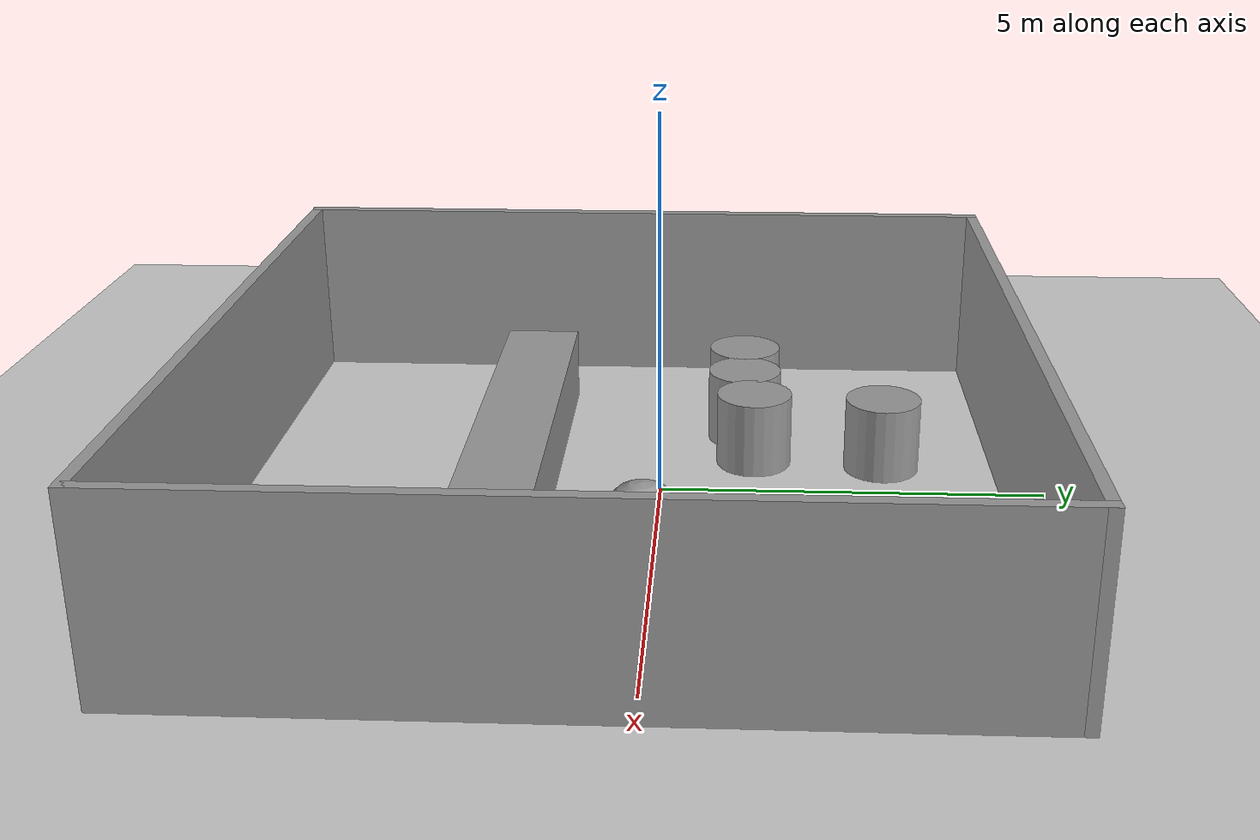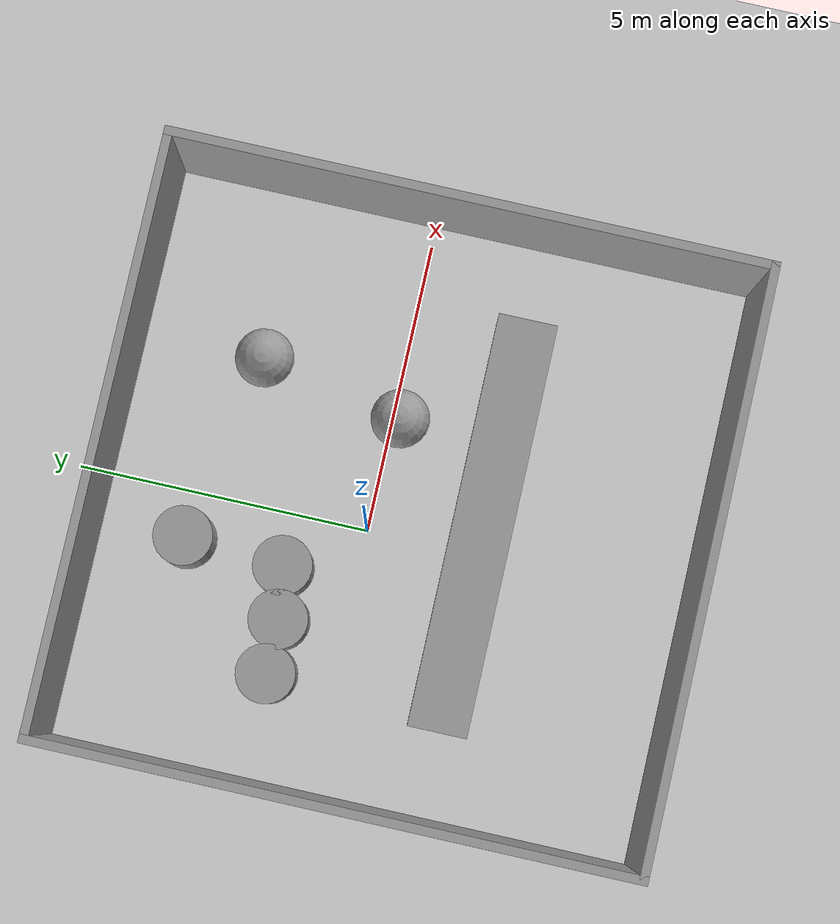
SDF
<sdf version="1.6">
 <world name="default">
  <light name="sun" type="directional">
   <pose>0 0 10 0 -0 0</pose>
   <diffuse>0.8 0.8 0.8 1</diffuse>
   <specular>0.2 0.2 0.2 1</specular>
   <attenuation>
    <range>1000</range>
    <constant>0.9</constant>
    <linear>0.01</linear>
    <quadratic>0.001</quadratic>
   </attenuation>
   <direction>-0.5 0.1 -0.9</direction>
  </light>
  <model name="ground_plane">
   <static>1</static>
   <link name="link">
    <collision name="collision">
     <geometry><plane><normal>0 0 1</normal><size>100 100</size></plane></geometry>
     <surface>
      <contact><collide_bitmask>65535</collide_bitmask></contact>
      <friction><ode><mu>100</mu><mu2>50</mu2></ode></friction>
     </surface>
    </collision>
    <visual name="visual">
     <cast_shadows>0</cast_shadows>
     <geometry><plane><normal>0 0 1</normal><size>100 100</size></plane></geometry>
     <material>
      <script><uri>file://media/materials/scripts/gazebo.material</uri><name>Gazebo/Grey</name></script>
     </material>
    </visual>
   </link>
  </model>
  <gravity>0 0 -9.8</gravity>
  <magnetic_field>6e-06 2.3e-05 -4.2e-05</magnetic_field>
  <atmosphere type="adiabatic"/>
  <physics name="default_physics" default="0" type="ode">
   <max_step_size>0.001</max_step_size>
   <real_time_factor>1</real_time_factor>
   <real_time_update_rate>1000</real_time_update_rate>
  </physics>
  <scene><ambient>0.4 0.4 0.4 1</ambient><background>0.7 0.7 0.7 1</background><shadows>1</shadows></scene>
  <audio><device>default</device></audio>
  <spherical_coordinates>
   <surface_model>EARTH_WGS84</surface_model>
   <latitude_deg>0</latitude_deg>
   <longitude_deg>0</longitude_deg>
   <elevation>0</elevation>
   <heading_deg>0</heading_deg>
  </spherical_coordinates>
  <model name="square_room.sdf">
   <pose>0.429865 -0.500124 0 0 -0 0</pose>
   <link name="Wall_0">
    <collision name="Wall_0_Collision">
     <geometry><box><size>10.15 0.15 2.5</size></box></geometry>
     <pose>0 0 1.25 0 -0 0</pose>
    </collision>
    <visual name="Wall_0_Visual">
     <pose>0 0 1.25 0 -0 0</pose>
     <geometry><box><size>10.15 0.15 2.5</size></box></geometry>
     <material>
      <script><uri>file://media/materials/scripts/gazebo.material</uri><name>Gazebo/Grey</name></script>
      <ambient>1 1 1 1</ambient>
     </material>
     <meta><layer>0</layer></meta>
    </visual>
    <pose>-5 0 0 0 -0 -1.5708</pose>
   </link>
   <link name="Wall_1">
    <collision name="Wall_1_Collision">
     <geometry><box><size>10.15 0.15 2.5</size></box></geometry>
     <pose>0 0 1.25 0 -0 0</pose>
    </collision>
    <visual name="Wall_1_Visual">
     <pose>0 0 1.25 0 -0 0</pose>
     <geometry><box><size>10.15 0.15 2.5</size></box></geometry>
     <material>
      <script><uri>file://media/materials/scripts/gazebo.material</uri><name>Gazebo/Grey</name></script>
      <ambient>1 1 1 1</ambient>
     </material>
     <meta><layer>0</layer></meta>
    </visual>
    <pose>0 -5 0 0 -0 0</pose>
   </link>
   <link name="Wall_2">
    <collision name="Wall_2_Collision">
     <geometry><box><size>10.15 0.15 2.5</size></box></geometry>
     <pose>0 0 1.25 0 -0 0</pose>
    </collision>
    <visual name="Wall_2_Visual">
     <pose>0 0 1.25 0 -0 0</pose>
     <geometry><box><size>10.15 0.15 2.5</size></box></geometry>
     <material>
      <script><uri>file://media/materials/scripts/gazebo.material</uri><name>Gazebo/Grey</name></script>
      <ambient>1 1 1 1</ambient>
     </material>
     <meta><layer>0</layer></meta>
    </visual>
    <pose>5 0 0 0 -0 1.5708</pose>
   </link>
   <link name="Wall_3">
    <collision name="Wall_3_Collision">
     <geometry><box><size>10.15 0.15 2.5</size></box></geometry>
     <pose>0 0 1.25 0 -0 0</pose>
    </collision>
    <visual name="Wall_3_Visual">
     <pose>0 0 1.25 0 -0 0</pose>
     <geometry><box><size>10.15 0.15 2.5</size></box></geometry>
     <material>
      <script><uri>file://media/materials/scripts/gazebo.material</uri><name>Gazebo/Grey</name></script>
      <ambient>1 1 1 1</ambient>
     </material>
     <meta><layer>0</layer></meta>
    </visual>
    <pose>0 5 0 0 -0 3.14159</pose>
   </link>
   <static>1</static>
  </model>
  <model name="long_barrier.sdf">
   <link name="link_0">
    <inertial>
     <mass>14000</mass>
     <inertia><ixx>2333.33</ixx><ixy>0</ixy><ixz>0</ixz><iyy>58333.3</iyy><iyz>0</iyz><izz>58333.3</izz></inertia>
     <pose>0 -1 0 0 -0 0</pose>
    </inertial>
    <pose>-0.26022 -1.61939 0.044072 -0.003326 0.174444 0.180842</pose>
    <visual name="visual">
     <pose>0 -1 0 0 -0 0</pose>
     <geometry><box><size>7 1 1</size></box></geometry>
     <material>
      <lighting>1</lighting>
      <script><uri>file://media/materials/scripts/gazebo.material</uri><name>Gazebo/Grey</name></script>
      <shader type="vertex"><normal_map>__default__</normal_map></shader>
      <ambient>0.3 0.3 0.3 1</ambient>
      <diffuse>0.7 0.7 0.7 1</diffuse>
      <specular>0.01 0.01 0.01 1</specular>
      <emissive>0 0 0 1</emissive>
     </material>
    </visual>
    <collision name="collision">
     <pose>0 -1 0 0 -0 0</pose>
     <geometry><box><size>7 1 1</size></box></geometry>
     <surface>
      <friction>
       <ode><mu>1</mu><mu2>1</mu2><fdir1>0 0 0</fdir1><slip1>0</slip1><slip2>0</slip2></ode>
       <torsional>
        <coefficient>1</coefficient>
        <patch_radius>0</patch_radius>
        <surface_radius>0</surface_radius>
        <use_patch_radius>1</use_patch_radius>
        <ode><slip>0</slip></ode>
       </torsional>
      </friction>
      <bounce><restitution_coefficient>0</restitution_coefficient><threshold>1e+06</threshold></bounce>
      <contact>
       <collide_without_contact>0</collide_without_contact>
       <collide_without_contact_bitmask>1</collide_without_contact_bitmask>
       <collide_bitmask>1</collide_bitmask>
       <ode>
        <soft_cfm>0</soft_cfm>
        <soft_erp>0.2</soft_erp>
        <kp>1e+13</kp>
        <kd>1</kd>
        <max_vel>0.01</max_vel>
        <min_depth>0</min_depth>
       </ode>
       <bullet>
        <split_impulse>1</split_impulse>
        <split_impulse_penetration_threshold>-0.01</split_impulse_penetration_threshold>
        <soft_cfm>0</soft_cfm>
        <soft_erp>0.2</soft_erp>
        <kp>1e+13</kp>
        <kd>1</kd>
       </bullet>
      </contact>
     </surface>
    </collision>
   </link>
   <static>0</static>
   <pose>0.996453 -1.81247 -1.96773 -1.5708 -0.17723 0.175835</pose>
  </model>
  <model name="obstacles.sdf">
   <link name="link_0">
    <inertial>
     <mass>1570.8</mass>
     <inertia><ixx>229.074</ixx><ixy>0</ixy><ixz>0</ixz><iyy>229.074</iyy><iyz>0</iyz><izz>196.35</izz></inertia>
    </inertial>
    <pose>-2.50752 0.241175 0 0 -0 0</pose>
    <visual name="visual">
     <geometry><cylinder><radius>0.5</radius><length>1</length></cylinder></geometry>
     <material>
      <lighting>1</lighting>
      <script><uri>file://media/materials/scripts/gazebo.material</uri><name>Gazebo/Grey</name></script>
      <shader type="vertex"><normal_map>__default__</normal_map></shader>
     </material>
    </visual>
    <collision name="collision">
     <geometry><cylinder><radius>0.5</radius><length>1</length></cylinder></geometry>
     <surface>
      <friction>
       <ode><mu>1</mu><mu2>1</mu2><fdir1>0 0 0</fdir1><slip1>0</slip1><slip2>0</slip2></ode>
       <torsional>
        <coefficient>1</coefficient>
        <patch_radius>0</patch_radius>
        <surface_radius>0</surface_radius>
        <use_patch_radius>1</use_patch_radius>
        <ode><slip>0</slip></ode>
       </torsional>
      </friction>
      <bounce><restitution_coefficient>0</restitution_coefficient><threshold>1e+06</threshold></bounce>
      <contact>
       <collide_without_contact>0</collide_without_contact>
       <collide_without_contact_bitmask>1</collide_without_contact_bitmask>
       <collide_bitmask>1</collide_bitmask>
       <ode>
        <soft_cfm>0</soft_cfm>
        <soft_erp>0.2</soft_erp>
        <kp>1e+13</kp>
        <kd>1</kd>
        <max_vel>0.01</max_vel>
        <min_depth>0</min_depth>
       </ode>
       <bullet>
        <split_impulse>1</split_impulse>
        <split_impulse_penetration_threshold>-0.01</split_impulse_penetration_threshold>
        <soft_cfm>0</soft_cfm>
        <soft_erp>0.2</soft_erp>
        <kp>1e+13</kp>
        <kd>1</kd>
       </bullet>
      </contact>
     </surface>
    </collision>
   </link>
   <link name="link_1">
    <inertial>
     <mass>1570.8</mass>
     <inertia><ixx>229.074</ixx><ixy>0</ixy><ixz>0</ixz><iyy>229.074</iyy><iyz>0</iyz><izz>196.35</izz></inertia>
    </inertial>
    <pose>-1.58866 0.239551 0 0 -0 0</pose>
    <visual name="visual">
     <geometry><cylinder><radius>0.5</radius><length>1</length></cylinder></geometry>
     <material>
      <lighting>1</lighting>
      <script><uri>file://media/materials/scripts/gazebo.material</uri><name>Gazebo/Grey</name></script>
      <shader type="vertex"><normal_map>__default__</normal_map></shader>
     </material>
    </visual>
    <collision name="collision">
     <geometry><cylinder><radius>0.5</radius><length>1</length></cylinder></geometry>
     <surface>
      <friction>
       <ode><mu>1</mu><mu2>1</mu2><fdir1>0 0 0</fdir1><slip1>0</slip1><slip2>0</slip2></ode>
       <torsional>
        <coefficient>1</coefficient>
        <patch_radius>0</patch_radius>
        <surface_radius>0</surface_radius>
        <use_patch_radius>1</use_patch_radius>
        <ode><slip>0</slip></ode>
       </torsional>
      </friction>
      <bounce><restitution_coefficient>0</restitution_coefficient><threshold>1e+06</threshold></bounce>
      <contact>
       <collide_without_contact>0</collide_without_contact>
       <collide_without_contact_bitmask>1</collide_without_contact_bitmask>
       <collide_bitmask>1</collide_bitmask>
       <ode>
        <soft_cfm>0</soft_cfm>
        <soft_erp>0.2</soft_erp>
        <kp>1e+13</kp>
        <kd>1</kd>
        <max_vel>0.01</max_vel>
        <min_depth>0</min_depth>
       </ode>
       <bullet>
        <split_impulse>1</split_impulse>
        <split_impulse_penetration_threshold>-0.01</split_impulse_penetration_threshold>
        <soft_cfm>0</soft_cfm>
        <soft_erp>0.2</soft_erp>
        <kp>1e+13</kp>
        <kd>1</kd>
       </bullet>
      </contact>
     </surface>
    </collision>
   </link>
   <link name="link_2">
    <inertial>
     <mass>1570.8</mass>
     <inertia><ixx>229.074</ixx><ixy>0</ixy><ixz>0</ixz><iyy>229.074</iyy><iyz>0</iyz><izz>196.35</izz></inertia>
    </inertial>
    <pose>-0.707908 0.367576 0 0 -0 0</pose>
    <visual name="visual">
     <geometry><cylinder><radius>0.5</radius><length>1</length></cylinder></geometry>
     <material>
      <lighting>1</lighting>
      <script><uri>file://media/materials/scripts/gazebo.material</uri><name>Gazebo/Grey</name></script>
      <shader type="vertex"><normal_map>__default__</normal_map></shader>
     </material>
    </visual>
    <collision name="collision">
     <geometry><cylinder><radius>0.5</radius><length>1</length></cylinder></geometry>
     <surface>
      <friction>
       <ode><mu>1</mu><mu2>1</mu2><fdir1>0 0 0</fdir1><slip1>0</slip1><slip2>0</slip2></ode>
       <torsional>
        <coefficient>1</coefficient>
        <patch_radius>0</patch_radius>
        <surface_radius>0</surface_radius>
        <use_patch_radius>1</use_patch_radius>
        <ode><slip>0</slip></ode>
       </torsional>
      </friction>
      <bounce><restitution_coefficient>0</restitution_coefficient><threshold>1e+06</threshold></bounce>
      <contact>
       <collide_without_contact>0</collide_without_contact>
       <collide_without_contact_bitmask>1</collide_without_contact_bitmask>
       <collide_bitmask>1</collide_bitmask>
       <ode>
        <soft_cfm>0</soft_cfm>
        <soft_erp>0.2</soft_erp>
        <kp>1e+13</kp>
        <kd>1</kd>
        <max_vel>0.01</max_vel>
        <min_depth>0</min_depth>
       </ode>
       <bullet>
        <split_impulse>1</split_impulse>
        <split_impulse_penetration_threshold>-0.01</split_impulse_penetration_threshold>
        <soft_cfm>0</soft_cfm>
        <soft_erp>0.2</soft_erp>
        <kp>1e+13</kp>
        <kd>1</kd>
       </bullet>
      </contact>
     </surface>
    </collision>
   </link>
   <link name="link_3">
    <inertial>
     <mass>1570.8</mass>
     <inertia><ixx>229.074</ixx><ixy>0</ixy><ixz>0</ixz><iyy>229.074</iyy><iyz>0</iyz><izz>196.35</izz></inertia>
    </inertial>
    <pose>-0.588067 2.08543 0 0 -0 0</pose>
    <visual name="visual">
     <geometry><cylinder><radius>0.5</radius><length>1</length></cylinder></geometry>
     <material>
      <lighting>1</lighting>
      <script><uri>file://media/materials/scripts/gazebo.material</uri><name>Gazebo/Grey</name></script>
      <shader type="vertex"><normal_map>__default__</normal_map></shader>
     </material>
    </visual>
    <collision name="collision">
     <geometry><cylinder><radius>0.5</radius><length>1</length></cylinder></geometry>
     <surface>
      <friction>
       <ode><mu>1</mu><mu2>1</mu2><fdir1>0 0 0</fdir1><slip1>0</slip1><slip2>0</slip2></ode>
       <torsional>
        <coefficient>1</coefficient>
        <patch_radius>0</patch_radius>
        <surface_radius>0</surface_radius>
        <use_patch_radius>1</use_patch_radius>
        <ode><slip>0</slip></ode>
       </torsional>
      </friction>
      <bounce><restitution_coefficient>0</restitution_coefficient><threshold>1e+06</threshold></bounce>
      <contact>
       <collide_without_contact>0</collide_without_contact>
       <collide_without_contact_bitmask>1</collide_without_contact_bitmask>
       <collide_bitmask>1</collide_bitmask>
       <ode>
        <soft_cfm>0</soft_cfm>
        <soft_erp>0.2</soft_erp>
        <kp>1e+13</kp>
        <kd>1</kd>
        <max_vel>0.01</max_vel>
        <min_depth>0</min_depth>
       </ode>
       <bullet>
        <split_impulse>1</split_impulse>
        <split_impulse_penetration_threshold>-0.01</split_impulse_penetration_threshold>
        <soft_cfm>0</soft_cfm>
        <soft_erp>0.2</soft_erp>
        <kp>1e+13</kp>
        <kd>1</kd>
       </bullet>
      </contact>
     </surface>
    </collision>
   </link>
   <link name="link_5">
    <inertial>
     <mass>1047.2</mass>
     <inertia><ixx>104.72</ixx><ixy>0</ixy><ixz>0</ixz><iyy>104.72</iyy><iyz>0</iyz><izz>104.72</izz></inertia>
    </inertial>
    <pose>2.15914 -0.982726 0 0 -0 0</pose>
    <visual name="visual">
     <geometry><sphere><radius>0.5</radius></sphere></geometry>
     <material>
      <lighting>1</lighting>
      <script><uri>file://media/materials/scripts/gazebo.material</uri><name>Gazebo/Grey</name></script>
      <shader type="vertex"><normal_map>__default__</normal_map></shader>
     </material>
    </visual>
    <collision name="collision">
     <geometry><sphere><radius>0.5</radius></sphere></geometry>
     <surface>
      <friction>
       <ode><mu>1</mu><mu2>1</mu2><fdir1>0 0 0</fdir1><slip1>0</slip1><slip2>0</slip2></ode>
       <torsional>
        <coefficient>1</coefficient>
        <patch_radius>0</patch_radius>
        <surface_radius>0</surface_radius>
        <use_patch_radius>1</use_patch_radius>
        <ode><slip>0</slip></ode>
       </torsional>
      </friction>
      <bounce><restitution_coefficient>0</restitution_coefficient><threshold>1e+06</threshold></bounce>
      <contact>
       <collide_without_contact>0</collide_without_contact>
       <collide_without_contact_bitmask>1</collide_without_contact_bitmask>
       <collide_bitmask>1</collide_bitmask>
       <ode>
        <soft_cfm>0</soft_cfm>
        <soft_erp>0.2</soft_erp>
        <kp>1e+13</kp>
        <kd>1</kd>
        <max_vel>0.01</max_vel>
        <min_depth>0</min_depth>
       </ode>
       <bullet>
        <split_impulse>1</split_impulse>
        <split_impulse_penetration_threshold>-0.01</split_impulse_penetration_threshold>
        <soft_cfm>0</soft_cfm>
        <soft_erp>0.2</soft_erp>
        <kp>1e+13</kp>
        <kd>1</kd>
       </bullet>
      </contact>
     </surface>
    </collision>
   </link>
   <link name="link_6">
    <inertial>
     <mass>1047.2</mass>
     <inertia><ixx>104.72</ixx><ixy>0</ixy><ixz>0</ixz><iyy>104.72</iyy><iyz>0</iyz><izz>104.72</izz></inertia>
    </inertial>
    <pose>2.66066 1.47394 0 0 -0 0</pose>
    <visual name="visual">
     <geometry><sphere><radius>0.5</radius></sphere></geometry>
     <material>
      <lighting>1</lighting>
      <script><uri>file://media/materials/scripts/gazebo.material</uri><name>Gazebo/Grey</name></script>
      <shader type="vertex"><normal_map>__default__</normal_map></shader>
     </material>
    </visual>
    <collision name="collision">
     <geometry><sphere><radius>0.5</radius></sphere></geometry>
     <surface>
      <friction>
       <ode><mu>1</mu><mu2>1</mu2><fdir1>0 0 0</fdir1><slip1>0</slip1><slip2>0</slip2></ode>
       <torsional>
        <coefficient>1</coefficient>
        <patch_radius>0</patch_radius>
        <surface_radius>0</surface_radius>
        <use_patch_radius>1</use_patch_radius>
        <ode><slip>0</slip></ode>
       </torsional>
      </friction>
      <bounce><restitution_coefficient>0</restitution_coefficient><threshold>1e+06</threshold></bounce>
      <contact>
       <collide_without_contact>0</collide_without_contact>
       <collide_without_contact_bitmask>1</collide_without_contact_bitmask>
       <collide_bitmask>1</collide_bitmask>
       <ode>
        <soft_cfm>0</soft_cfm>
        <soft_erp>0.2</soft_erp>
        <kp>1e+13</kp>
        <kd>1</kd>
        <max_vel>0.01</max_vel>
        <min_depth>0</min_depth>
       </ode>
       <bullet>
        <split_impulse>1</split_impulse>
        <split_impulse_penetration_threshold>-0.01</split_impulse_penetration_threshold>
        <soft_cfm>0</soft_cfm>
        <soft_erp>0.2</soft_erp>
        <kp>1e+13</kp>
        <kd>1</kd>
       </bullet>
      </contact>
     </surface>
    </collision>
   </link>
   <static>0</static>
   <pose>-0.217329 0.856958 0.500004 -2e-06 -2e-06 0</pose>
  </model>
 </world>
</sdf>
